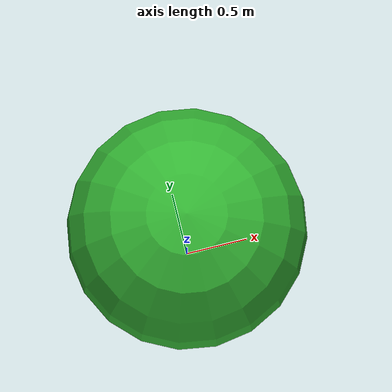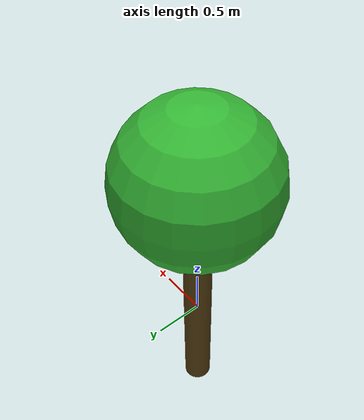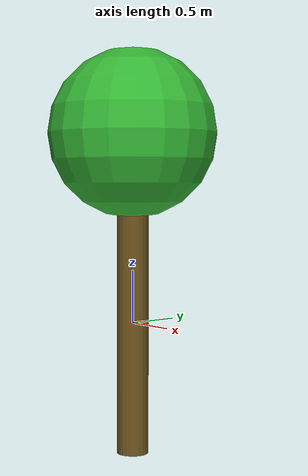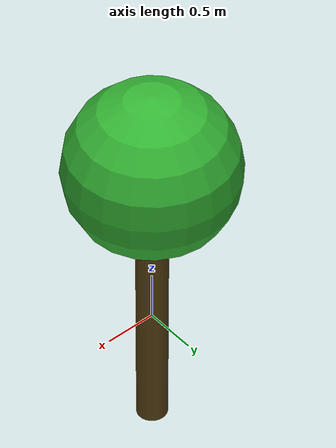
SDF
<?xml version="1.0" ?>
<sdf version="1.6">
  <model name="ginkgo_tree">
    <static>true</static>
    <link name="trunk">
      <visual name="trunk_visual">
        <geometry>
          <cylinder>
            <radius>0.15</radius>
            <length>2.5</length>
          </cylinder>
        </geometry>
        <material>
          <ambient>0.4 0.3 0.1 1</ambient>
        </material>
      </visual>
      <visual name="foliage_visual">
        <pose>0 0 1.8 0 0 0</pose>
        <geometry>
          <sphere>
            <radius>0.8</radius>
          </sphere>
        </geometry>
        <material>
          <ambient>0.2 0.7 0.2 1</ambient>
        </material>
      </visual>
    </link>
  </model>
</sdf>
